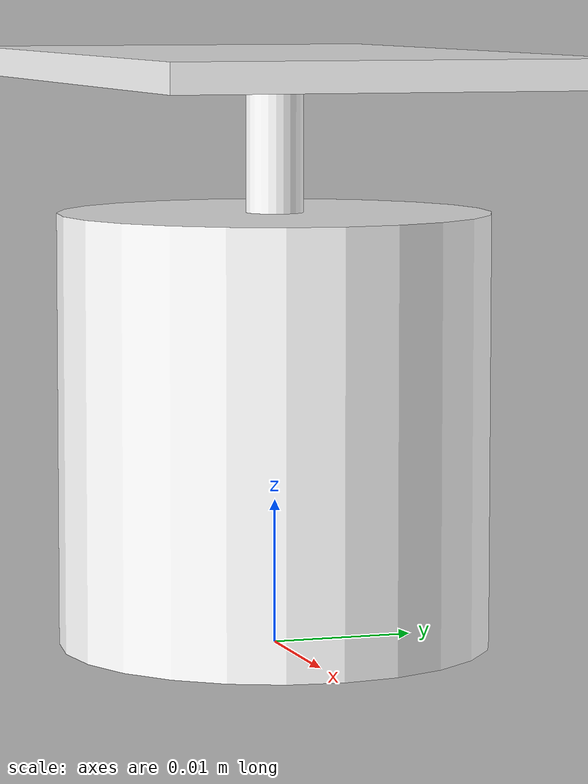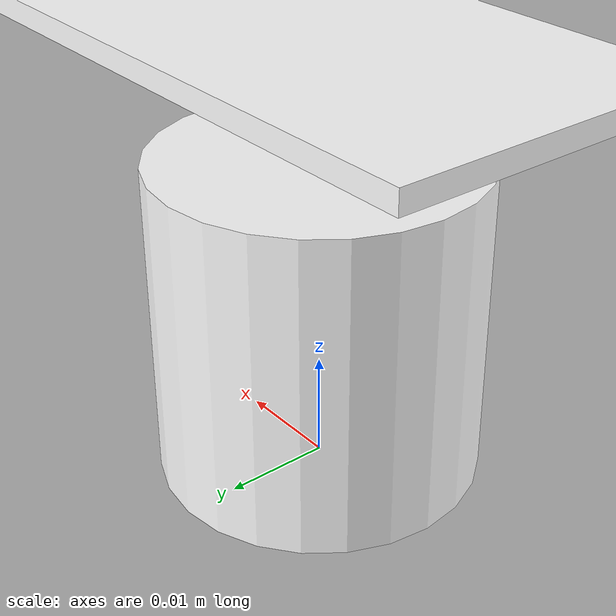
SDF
<?xml version="1.0" ?>
<sdf version="1.5">
  <model name="mrsim-rotor">
    <link name="propeller">
      <gravity>0</gravity>
      <inertial>
        <mass>0.036</mass>
        <inertia>
          <ixx>4e-5</ixx><ixy>0</ixy><ixz>0</ixz>
          <iyy>4e-5</iyy><iyz>0</iyz>
          <izz>8e-5</izz>
        </inertia>
      </inertial>

      <collision name="collision">
        <pose>0 0 0.04 0 0 0</pose>
        <geometry>
          <cylinder><radius>0.127</radius><length>0.002</length></cylinder>
        </geometry>
      </collision>

      <visual name="motor">
        <pose>0 0 0.015 0 0 0</pose>
        <geometry>
          <cylinder><radius>0.015</radius><length>0.03</length></cylinder>
        </geometry>
        <material>
          <ambient>0.1 0.1 0.1 1</ambient>
          <diffuse>1.0 1.0 1.0 1</diffuse>
        </material>
      </visual>

      <visual name="axle">
        <pose>0 0 0.035 0 0 0</pose>
        <geometry>
          <cylinder><radius>0.002</radius><length>0.01</length></cylinder>
        </geometry>
        <material>
          <ambient>0.1 0.1 0.1 1</ambient>
          <diffuse>1.0 1.0 1.0 1</diffuse>
        </material>
      </visual>

      <visual name="blade">
        <pose>0 0 0.04 0 0 0</pose>
        <geometry>
          <box><size>0.25 0.03 0.002</size></box>
        </geometry>
        <material>
          <ambient>0.1 0.1 0.1 1</ambient>
          <diffuse>1.0 1.0 1.0 1</diffuse>
        </material>
      </visual>
    </link>
  </model>
</sdf>
